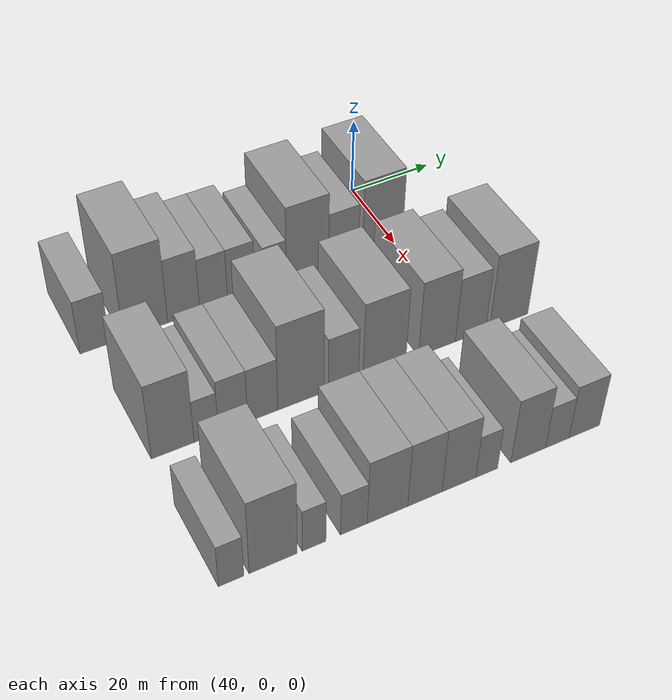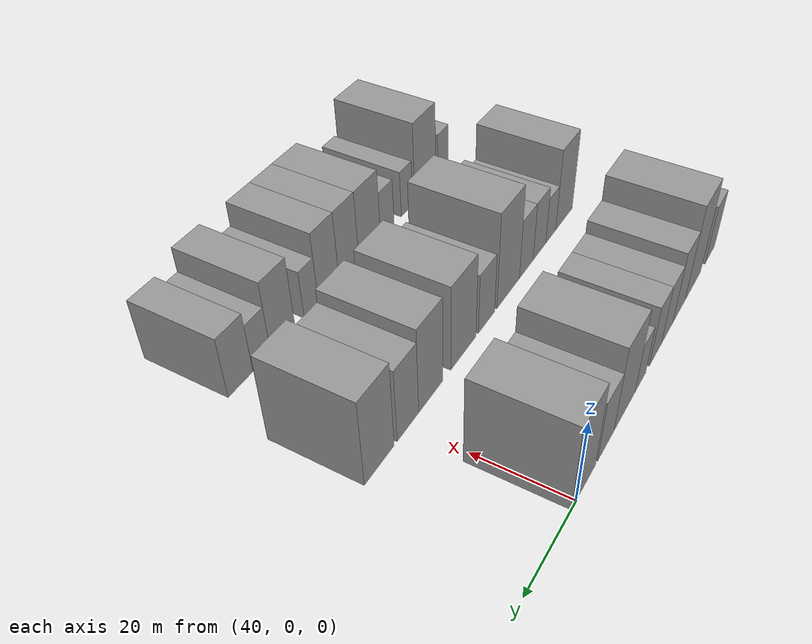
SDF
<sdf version="1.6">
 <world name="default">
  <model name="building_32">
   <static>1</static>
   <pose>50.0000 -70.8369 0 0.000000 0.000000 0.000000</pose>
   <link name="link">
    <pose>0 0 7.50 0 0 0</pose>
    <collision name="collision"><geometry><box><size>20.0000 6.5655 15.0000</size></box></geometry></collision>
    <visual name="visual">
     <cast_shadows>0</cast_shadows>
     <geometry><box><size>20.0000 6.5655 15.0000</size></box></geometry>
     <material>
      <script>
       <uri>model://grey_wall/materials/scripts</uri>
       <uri>model://grey_wall/materials/textures</uri>
       <name>vrc/grey_wall</name>
      </script>
     </material>
    </visual>
   </link>
  </model>
  <model name="building_33">
   <static>1</static>
   <pose>50.0000 -59.5603 0 0.000000 0.000000 0.000000</pose>
   <link name="link">
    <pose>0 0 12.00 0 0 0</pose>
    <collision name="collision"><geometry><box><size>20.0000 9.9878 24.0000</size></box></geometry></collision>
    <visual name="visual">
     <cast_shadows>0</cast_shadows>
     <geometry><box><size>20.0000 9.9878 24.0000</size></box></geometry>
     <material>
      <script>
       <uri>model://grey_wall/materials/scripts</uri>
       <uri>model://grey_wall/materials/textures</uri>
       <name>vrc/grey_wall</name>
      </script>
     </material>
    </visual>
   </link>
  </model>
  <model name="building_34">
   <static>1</static>
   <pose>50.0000 -50.9068 0 0.000000 0.000000 0.000000</pose>
   <link name="link">
    <pose>0 0 9.00 0 0 0</pose>
    <collision name="collision"><geometry><box><size>20.0000 7.3193 18.0000</size></box></geometry></collision>
    <visual name="visual">
     <cast_shadows>0</cast_shadows>
     <geometry><box><size>20.0000 7.3193 18.0000</size></box></geometry>
     <material>
      <script>
       <uri>model://grey_wall/materials/scripts</uri>
       <uri>model://grey_wall/materials/textures</uri>
       <name>vrc/grey_wall</name>
      </script>
     </material>
    </visual>
   </link>
  </model>
  <model name="building_35">
   <static>1</static>
   <pose>50.0000 -44.0007 0 0.000000 0.000000 0.000000</pose>
   <link name="link">
    <pose>0 0 7.50 0 0 0</pose>
    <collision name="collision"><geometry><box><size>20.0000 6.4929 15.0000</size></box></geometry></collision>
    <visual name="visual">
     <cast_shadows>0</cast_shadows>
     <geometry><box><size>20.0000 6.4929 15.0000</size></box></geometry>
     <material>
      <script>
       <uri>model://grey_wall/materials/scripts</uri>
       <uri>model://grey_wall/materials/textures</uri>
       <name>vrc/grey_wall</name>
      </script>
     </material>
    </visual>
   </link>
  </model>
  <model name="building_36">
   <static>1</static>
   <pose>50.0000 -37.5284 0 0.000000 0.000000 0.000000</pose>
   <link name="link">
    <pose>0 0 7.50 0 0 0</pose>
    <collision name="collision"><geometry><box><size>20.0000 6.4517 15.0000</size></box></geometry></collision>
    <visual name="visual">
     <cast_shadows>0</cast_shadows>
     <geometry><box><size>20.0000 6.4517 15.0000</size></box></geometry>
     <material>
      <script>
       <uri>model://grey_wall/materials/scripts</uri>
       <uri>model://grey_wall/materials/textures</uri>
       <name>vrc/grey_wall</name>
      </script>
     </material>
    </visual>
   </link>
  </model>
  <model name="building_37">
   <static>1</static>
   <pose>50.0000 -29.5365 0 0.000000 0.000000 0.000000</pose>
   <link name="link">
    <pose>0 0 6.00 0 0 0</pose>
    <collision name="collision"><geometry><box><size>20.0000 5.5320 12.0000</size></box></geometry></collision>
    <visual name="visual">
     <cast_shadows>0</cast_shadows>
     <geometry><box><size>20.0000 5.5320 12.0000</size></box></geometry>
     <material>
      <script>
       <uri>model://grey_wall/materials/scripts</uri>
       <uri>model://grey_wall/materials/textures</uri>
       <name>vrc/grey_wall</name>
      </script>
     </material>
    </visual>
   </link>
  </model>
  <model name="building_38">
   <static>1</static>
   <pose>50.0000 -21.6324 0 0.000000 0.000000 0.000000</pose>
   <link name="link">
    <pose>0 0 10.50 0 0 0</pose>
    <collision name="collision"><geometry><box><size>20.0000 10.2764 21.0000</size></box></geometry></collision>
    <visual name="visual">
     <cast_shadows>0</cast_shadows>
     <geometry><box><size>20.0000 10.2764 21.0000</size></box></geometry>
     <material>
      <script>
       <uri>model://grey_wall/materials/scripts</uri>
       <uri>model://grey_wall/materials/textures</uri>
       <name>vrc/grey_wall</name>
      </script>
     </material>
    </visual>
   </link>
  </model>
  <model name="building_39">
   <static>1</static>
   <pose>50.0000 -12.7907 0 0.000000 0.000000 0.000000</pose>
   <link name="link">
    <pose>0 0 7.50 0 0 0</pose>
    <collision name="collision"><geometry><box><size>20.0000 7.4069 15.0000</size></box></geometry></collision>
    <visual name="visual">
     <cast_shadows>0</cast_shadows>
     <geometry><box><size>20.0000 7.4069 15.0000</size></box></geometry>
     <material>
      <script>
       <uri>model://grey_wall/materials/scripts</uri>
       <uri>model://grey_wall/materials/textures</uri>
       <name>vrc/grey_wall</name>
      </script>
     </material>
    </visual>
   </link>
  </model>
  <model name="building_40">
   <static>1</static>
   <pose>50.0000 -3.0207 0 0.000000 0.000000 0.000000</pose>
   <link name="link">
    <pose>0 0 10.50 0 0 0</pose>
    <collision name="collision"><geometry><box><size>20.0000 10.1332 21.0000</size></box></geometry></collision>
    <visual name="visual">
     <cast_shadows>0</cast_shadows>
     <geometry><box><size>20.0000 10.1332 21.0000</size></box></geometry>
     <material>
      <script>
       <uri>model://grey_wall/materials/scripts</uri>
       <uri>model://grey_wall/materials/textures</uri>
       <name>vrc/grey_wall</name>
      </script>
     </material>
    </visual>
   </link>
  </model>
  <model name="building_109">
   <static>1</static>
   <pose>82.0000 -66.9388 0 0.000000 0.000000 0.000000</pose>
   <link name="link">
    <pose>0 0 10.50 0 0 0</pose>
    <collision name="collision"><geometry><box><size>20.0000 8.9596 21.0000</size></box></geometry></collision>
    <visual name="visual">
     <cast_shadows>0</cast_shadows>
     <geometry><box><size>20.0000 8.9596 21.0000</size></box></geometry>
     <material>
      <script>
       <uri>model://grey_wall/materials/scripts</uri>
       <uri>model://grey_wall/materials/textures</uri>
       <name>vrc/grey_wall</name>
      </script>
     </material>
    </visual>
   </link>
  </model>
  <model name="building_110">
   <static>1</static>
   <pose>82.0000 -59.8773 0 0.000000 0.000000 0.000000</pose>
   <link name="link">
    <pose>0 0 6.00 0 0 0</pose>
    <collision name="collision"><geometry><box><size>20.0000 5.1635 12.0000</size></box></geometry></collision>
    <visual name="visual">
     <cast_shadows>0</cast_shadows>
     <geometry><box><size>20.0000 5.1635 12.0000</size></box></geometry>
     <material>
      <script>
       <uri>model://grey_wall/materials/scripts</uri>
       <uri>model://grey_wall/materials/textures</uri>
       <name>vrc/grey_wall</name>
      </script>
     </material>
    </visual>
   </link>
  </model>
  <model name="building_111">
   <static>1</static>
   <pose>82.0000 -54.1463 0 0.000000 0.000000 0.000000</pose>
   <link name="link">
    <pose>0 0 7.50 0 0 0</pose>
    <collision name="collision"><geometry><box><size>20.0000 6.2985 15.0000</size></box></geometry></collision>
    <visual name="visual">
     <cast_shadows>0</cast_shadows>
     <geometry><box><size>20.0000 6.2985 15.0000</size></box></geometry>
     <material>
      <script>
       <uri>model://grey_wall/materials/scripts</uri>
       <uri>model://grey_wall/materials/textures</uri>
       <name>vrc/grey_wall</name>
      </script>
     </material>
    </visual>
   </link>
  </model>
  <model name="building_112">
   <static>1</static>
   <pose>82.0000 -47.6945 0 0.000000 0.000000 0.000000</pose>
   <link name="link">
    <pose>0 0 7.50 0 0 0</pose>
    <collision name="collision"><geometry><box><size>20.0000 6.6052 15.0000</size></box></geometry></collision>
    <visual name="visual">
     <cast_shadows>0</cast_shadows>
     <geometry><box><size>20.0000 6.6052 15.0000</size></box></geometry>
     <material>
      <script>
       <uri>model://grey_wall/materials/scripts</uri>
       <uri>model://grey_wall/materials/textures</uri>
       <name>vrc/grey_wall</name>
      </script>
     </material>
    </visual>
   </link>
  </model>
  <model name="building_113">
   <static>1</static>
   <pose>82.0000 -39.2772 0 0.000000 0.000000 0.000000</pose>
   <link name="link">
    <pose>0 0 12.00 0 0 0</pose>
    <collision name="collision"><geometry><box><size>20.0000 10.2294 24.0000</size></box></geometry></collision>
    <visual name="visual">
     <cast_shadows>0</cast_shadows>
     <geometry><box><size>20.0000 10.2294 24.0000</size></box></geometry>
     <material>
      <script>
       <uri>model://grey_wall/materials/scripts</uri>
       <uri>model://grey_wall/materials/textures</uri>
       <name>vrc/grey_wall</name>
      </script>
     </material>
    </visual>
   </link>
  </model>
  <model name="building_114">
   <static>1</static>
   <pose>82.0000 -29.7091 0 0.000000 0.000000 0.000000</pose>
   <link name="link">
    <pose>0 0 7.50 0 0 0</pose>
    <collision name="collision"><geometry><box><size>20.0000 6.9067 15.0000</size></box></geometry></collision>
    <visual name="visual">
     <cast_shadows>0</cast_shadows>
     <geometry><box><size>20.0000 6.9067 15.0000</size></box></geometry>
     <material>
      <script>
       <uri>model://grey_wall/materials/scripts</uri>
       <uri>model://grey_wall/materials/textures</uri>
       <name>vrc/grey_wall</name>
      </script>
     </material>
    </visual>
   </link>
  </model>
  <model name="building_115">
   <static>1</static>
   <pose>82.0000 -20.2514 0 0.000000 0.000000 0.000000</pose>
   <link name="link">
    <pose>0 0 10.50 0 0 0</pose>
    <collision name="collision"><geometry><box><size>20.0000 10.0088 21.0000</size></box></geometry></collision>
    <visual name="visual">
     <cast_shadows>0</cast_shadows>
     <geometry><box><size>20.0000 10.0088 21.0000</size></box></geometry>
     <material>
      <script>
       <uri>model://grey_wall/materials/scripts</uri>
       <uri>model://grey_wall/materials/textures</uri>
       <name>vrc/grey_wall</name>
      </script>
     </material>
    </visual>
   </link>
  </model>
  <model name="building_116">
   <static>1</static>
   <pose>82.0000 -7.8283 0 0.000000 0.000000 0.000000</pose>
   <link name="link">
    <pose>0 0 10.50 0 0 0</pose>
    <collision name="collision"><geometry><box><size>20.0000 8.8373 21.0000</size></box></geometry></collision>
    <visual name="visual">
     <cast_shadows>0</cast_shadows>
     <geometry><box><size>20.0000 8.8373 21.0000</size></box></geometry>
     <material>
      <script>
       <uri>model://grey_wall/materials/scripts</uri>
       <uri>model://grey_wall/materials/textures</uri>
       <name>vrc/grey_wall</name>
      </script>
     </material>
    </visual>
   </link>
  </model>
  <model name="building_117">
   <static>1</static>
   <pose>82.0000 0.2742 0 0.000000 0.000000 0.000000</pose>
   <link name="link">
    <pose>0 0 9.00 0 0 0</pose>
    <collision name="collision"><geometry><box><size>20.0000 7.3678 18.0000</size></box></geometry></collision>
    <visual name="visual">
     <cast_shadows>0</cast_shadows>
     <geometry><box><size>20.0000 7.3678 18.0000</size></box></geometry>
     <material>
      <script>
       <uri>model://grey_wall/materials/scripts</uri>
       <uri>model://grey_wall/materials/textures</uri>
       <name>vrc/grey_wall</name>
      </script>
     </material>
    </visual>
   </link>
  </model>
  <model name="building_118">
   <static>1</static>
   <pose>82.0000 9.6975 0 0.000000 0.000000 0.000000</pose>
   <link name="link">
    <pose>0 0 10.50 0 0 0</pose>
    <collision name="collision"><geometry><box><size>20.0000 9.4789 21.0000</size></box></geometry></collision>
    <visual name="visual">
     <cast_shadows>0</cast_shadows>
     <geometry><box><size>20.0000 9.4789 21.0000</size></box></geometry>
     <material>
      <script>
       <uri>model://grey_wall/materials/scripts</uri>
       <uri>model://grey_wall/materials/textures</uri>
       <name>vrc/grey_wall</name>
      </script>
     </material>
    </visual>
   </link>
  </model>
  <model name="building_192">
   <static>1</static>
   <pose>114.0000 -69.1702 0 0.000000 0.000000 0.000000</pose>
   <link name="link">
    <pose>0 0 6.00 0 0 0</pose>
    <collision name="collision"><geometry><box><size>20.0000 5.0239 12.0000</size></box></geometry></collision>
    <visual name="visual">
     <cast_shadows>0</cast_shadows>
     <geometry><box><size>20.0000 5.0239 12.0000</size></box></geometry>
     <material>
      <script>
       <uri>model://grey_wall/materials/scripts</uri>
       <uri>model://grey_wall/materials/textures</uri>
       <name>vrc/grey_wall</name>
      </script>
     </material>
    </visual>
   </link>
  </model>
  <model name="building_193">
   <static>1</static>
   <pose>114.0000 -60.8388 0 0.000000 0.000000 0.000000</pose>
   <link name="link">
    <pose>0 0 10.50 0 0 0</pose>
    <collision name="collision"><geometry><box><size>20.0000 9.6390 21.0000</size></box></geometry></collision>
    <visual name="visual">
     <cast_shadows>0</cast_shadows>
     <geometry><box><size>20.0000 9.6390 21.0000</size></box></geometry>
     <material>
      <script>
       <uri>model://grey_wall/materials/scripts</uri>
       <uri>model://grey_wall/materials/textures</uri>
       <name>vrc/grey_wall</name>
      </script>
     </material>
    </visual>
   </link>
  </model>
  <model name="building_194">
   <static>1</static>
   <pose>114.0000 -52.5958 0 0.000000 0.000000 0.000000</pose>
   <link name="link">
    <pose>0 0 6.00 0 0 0</pose>
    <collision name="collision"><geometry><box><size>20.0000 4.8469 12.0000</size></box></geometry></collision>
    <visual name="visual">
     <cast_shadows>0</cast_shadows>
     <geometry><box><size>20.0000 4.8469 12.0000</size></box></geometry>
     <material>
      <script>
       <uri>model://grey_wall/materials/scripts</uri>
       <uri>model://grey_wall/materials/textures</uri>
       <name>vrc/grey_wall</name>
      </script>
     </material>
    </visual>
   </link>
  </model>
  <model name="building_195">
   <static>1</static>
   <pose>114.0000 -44.3892 0 0.000000 0.000000 0.000000</pose>
   <link name="link">
    <pose>0 0 6.00 0 0 0</pose>
    <collision name="collision"><geometry><box><size>20.0000 5.5664 12.0000</size></box></geometry></collision>
    <visual name="visual">
     <cast_shadows>0</cast_shadows>
     <geometry><box><size>20.0000 5.5664 12.0000</size></box></geometry>
     <material>
      <script>
       <uri>model://grey_wall/materials/scripts</uri>
       <uri>model://grey_wall/materials/textures</uri>
       <name>vrc/grey_wall</name>
      </script>
     </material>
    </visual>
   </link>
  </model>
  <model name="building_196">
   <static>1</static>
   <pose>114.0000 -37.3029 0 0.000000 0.000000 0.000000</pose>
   <link name="link">
    <pose>0 0 9.00 0 0 0</pose>
    <collision name="collision"><geometry><box><size>20.0000 8.6061 18.0000</size></box></geometry></collision>
    <visual name="visual">
     <cast_shadows>0</cast_shadows>
     <geometry><box><size>20.0000 8.6061 18.0000</size></box></geometry>
     <material>
      <script>
       <uri>model://grey_wall/materials/scripts</uri>
       <uri>model://grey_wall/materials/textures</uri>
       <name>vrc/grey_wall</name>
      </script>
     </material>
    </visual>
   </link>
  </model>
  <model name="building_197">
   <static>1</static>
   <pose>114.0000 -29.2899 0 0.000000 0.000000 0.000000</pose>
   <link name="link">
    <pose>0 0 9.00 0 0 0</pose>
    <collision name="collision"><geometry><box><size>20.0000 7.4198 18.0000</size></box></geometry></collision>
    <visual name="visual">
     <cast_shadows>0</cast_shadows>
     <geometry><box><size>20.0000 7.4198 18.0000</size></box></geometry>
     <material>
      <script>
       <uri>model://grey_wall/materials/scripts</uri>
       <uri>model://grey_wall/materials/textures</uri>
       <name>vrc/grey_wall</name>
      </script>
     </material>
    </visual>
   </link>
  </model>
  <model name="building_198">
   <static>1</static>
   <pose>114.0000 -21.8542 0 0.000000 0.000000 0.000000</pose>
   <link name="link">
    <pose>0 0 9.00 0 0 0</pose>
    <collision name="collision"><geometry><box><size>20.0000 7.4517 18.0000</size></box></geometry></collision>
    <visual name="visual">
     <cast_shadows>0</cast_shadows>
     <geometry><box><size>20.0000 7.4517 18.0000</size></box></geometry>
     <material>
      <script>
       <uri>model://grey_wall/materials/scripts</uri>
       <uri>model://grey_wall/materials/textures</uri>
       <name>vrc/grey_wall</name>
      </script>
     </material>
    </visual>
   </link>
  </model>
  <model name="building_199">
   <static>1</static>
   <pose>114.0000 -15.6994 0 0.000000 0.000000 0.000000</pose>
   <link name="link">
    <pose>0 0 6.00 0 0 0</pose>
    <collision name="collision"><geometry><box><size>20.0000 4.8578 12.0000</size></box></geometry></collision>
    <visual name="visual">
     <cast_shadows>0</cast_shadows>
     <geometry><box><size>20.0000 4.8578 12.0000</size></box></geometry>
     <material>
      <script>
       <uri>model://grey_wall/materials/scripts</uri>
       <uri>model://grey_wall/materials/textures</uri>
       <name>vrc/grey_wall</name>
      </script>
     </material>
    </visual>
   </link>
  </model>
  <model name="building_200">
   <static>1</static>
   <pose>114.0000 -6.3267 0 0.000000 0.000000 0.000000</pose>
   <link name="link">
    <pose>0 0 9.00 0 0 0</pose>
    <collision name="collision"><geometry><box><size>20.0000 7.8875 18.0000</size></box></geometry></collision>
    <visual name="visual">
     <cast_shadows>0</cast_shadows>
     <geometry><box><size>20.0000 7.8875 18.0000</size></box></geometry>
     <material>
      <script>
       <uri>model://grey_wall/materials/scripts</uri>
       <uri>model://grey_wall/materials/textures</uri>
       <name>vrc/grey_wall</name>
      </script>
     </material>
    </visual>
   </link>
  </model>
  <model name="building_201">
   <static>1</static>
   <pose>114.0000 0.3375 0 0.000000 0.000000 0.000000</pose>
   <link name="link">
    <pose>0 0 6.00 0 0 0</pose>
    <collision name="collision"><geometry><box><size>20.0000 5.4410 12.0000</size></box></geometry></collision>
    <visual name="visual">
     <cast_shadows>0</cast_shadows>
     <geometry><box><size>20.0000 5.4410 12.0000</size></box></geometry>
     <material>
      <script>
       <uri>model://grey_wall/materials/scripts</uri>
       <uri>model://grey_wall/materials/textures</uri>
       <name>vrc/grey_wall</name>
      </script>
     </material>
    </visual>
   </link>
  </model>
  <model name="building_202">
   <static>1</static>
   <pose>114.0000 6.6842 0 0.000000 0.000000 0.000000</pose>
   <link name="link">
    <pose>0 0 7.50 0 0 0</pose>
    <collision name="collision"><geometry><box><size>20.0000 7.2524 15.0000</size></box></geometry></collision>
    <visual name="visual">
     <cast_shadows>0</cast_shadows>
     <geometry><box><size>20.0000 7.2524 15.0000</size></box></geometry>
     <material>
      <script>
       <uri>model://grey_wall/materials/scripts</uri>
       <uri>model://grey_wall/materials/textures</uri>
       <name>vrc/grey_wall</name>
      </script>
     </material>
    </visual>
   </link>
  </model>
 </world>
</sdf>
